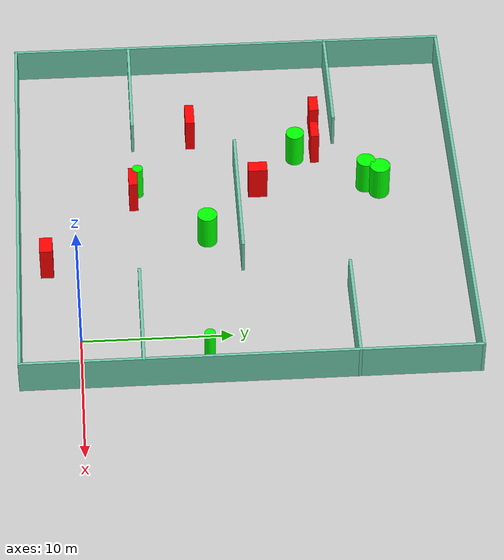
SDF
<sdf version="1.7">
 <world name="default">
  <light name="sun" type="directional">
   <pose>0 0 10 0 -0 0</pose>
   <diffuse>0.8 0.8 0.8 1</diffuse>
   <specular>0.2 0.2 0.2 1</specular>
   <attenuation>
    <range>1000</range>
    <constant>0.9</constant>
    <linear>0.01</linear>
    <quadratic>0.001</quadratic>
   </attenuation>
   <direction>-0.5 0.1 -0.9</direction>
   <spot><inner_angle>0</inner_angle><outer_angle>0</outer_angle><falloff>0</falloff></spot>
  </light>
  <model name="ground_plane">
   <static>1</static>
   <link name="link">
    <collision name="collision">
     <geometry><plane><normal>0 0 1</normal><size>100 100</size></plane></geometry>
     <surface>
      <contact><collide_bitmask>65535</collide_bitmask></contact>
      <friction><ode><mu>100</mu><mu2>50</mu2></ode></friction>
     </surface>
    </collision>
    <visual name="visual">
     <cast_shadows>0</cast_shadows>
     <geometry><plane><normal>0 0 1</normal><size>100 100</size></plane></geometry>
     <material>
      <script><uri>file://media/materials/scripts/gazebo.material</uri><name>Gazebo/Grey</name></script>
     </material>
    </visual>
   </link>
  </model>
  <gravity>0 0 -9.8</gravity>
  <magnetic_field>6e-06 2.3e-05 -4.2e-05</magnetic_field>
  <atmosphere type="adiabatic"/>
  <physics type="ode">
   <max_step_size>0.001</max_step_size>
   <real_time_factor>1</real_time_factor>
   <real_time_update_rate>1000</real_time_update_rate>
  </physics>
  <scene><ambient>0.4 0.4 0.4 1</ambient><background>0.7 0.7 0.7 1</background><shadows>1</shadows></scene>
  <spherical_coordinates>
   <surface_model>EARTH_WGS84</surface_model>
   <latitude_deg>0</latitude_deg>
   <longitude_deg>0</longitude_deg>
   <elevation>0</elevation>
   <heading_deg>0</heading_deg>
  </spherical_coordinates>
  <model name="my_base_walls">
   <link name="Wall_10">
    <collision name="Wall_10_Collision">
     <geometry><box><size>8.2 0.2 2.5</size></box></geometry>
     <pose>0 0 1.25 0 -0 0</pose>
    </collision>
    <visual name="Wall_10_Visual">
     <pose>0 0 1.25 0 -0 0</pose>
     <geometry><box><size>8.2 0.2 2.5</size></box></geometry>
     <material>
      <script><uri>file://media/materials/scripts/gazebo.material</uri><name>Gazebo/Grey</name></script>
      <ambient>0.435294 0.796078 0.67451 1</ambient>
     </material>
     <meta><layer>0</layer></meta>
    </visual>
    <pose>-11 -7 0 0 -0 0</pose>
   </link>
   <link name="Wall_12">
    <collision name="Wall_12_Collision">
     <geometry><box><size>8.2 0.2 2.5</size></box></geometry>
     <pose>0 0 1.25 0 -0 0</pose>
    </collision>
    <visual name="Wall_12_Visual">
     <pose>0 0 1.25 0 -0 0</pose>
     <geometry><box><size>8.2 0.2 2.5</size></box></geometry>
     <material>
      <script><uri>file://media/materials/scripts/gazebo.material</uri><name>Gazebo/Grey</name></script>
      <ambient>0.435294 0.796078 0.67451 1</ambient>
     </material>
     <meta><layer>0</layer></meta>
    </visual>
    <pose>-11 7 0 0 -0 0</pose>
   </link>
   <link name="Wall_14">
    <collision name="Wall_14_Collision">
     <geometry><box><size>8.2 0.2 2.5</size></box></geometry>
     <pose>0 0 1.25 0 -0 0</pose>
    </collision>
    <visual name="Wall_14_Visual">
     <pose>0 0 1.25 0 -0 0</pose>
     <geometry><box><size>8.2 0.2 2.5</size></box></geometry>
     <material>
      <script><uri>file://media/materials/scripts/gazebo.material</uri><name>Gazebo/Grey</name></script>
      <ambient>0.435294 0.796078 0.67451 1</ambient>
     </material>
     <meta><layer>0</layer></meta>
    </visual>
    <pose>11 7 0 0 -0 3.14159</pose>
   </link>
   <link name="Wall_16">
    <collision name="Wall_16_Collision">
     <geometry><box><size>10.2 0.2 2.5</size></box></geometry>
     <pose>0 0 1.25 0 -0 0</pose>
    </collision>
    <visual name="Wall_16_Visual">
     <pose>0 0 1.25 0 -0 0</pose>
     <geometry><box><size>10.2 0.2 2.5</size></box></geometry>
     <material>
      <script><uri>file://media/materials/scripts/gazebo.material</uri><name>Gazebo/Grey</name></script>
      <ambient>0.435294 0.796078 0.67451 1</ambient>
     </material>
     <meta><layer>0</layer></meta>
    </visual>
    <pose>0 0 0 0 -0 3.14159</pose>
   </link>
   <link name="Wall_2">
    <collision name="Wall_2_Collision">
     <geometry><box><size>30.2 0.2 2.5</size></box></geometry>
     <pose>0 0 1.25 0 -0 0</pose>
    </collision>
    <visual name="Wall_2_Visual">
     <pose>0 0 1.25 0 -0 0</pose>
     <geometry><box><size>30.2 0.2 2.5</size></box></geometry>
     <material>
      <script><uri>file://media/materials/scripts/gazebo.material</uri><name>Gazebo/Grey</name></script>
      <ambient>0.435294 0.796078 0.67451 1</ambient>
     </material>
     <meta><layer>0</layer></meta>
    </visual>
    <pose>0 -15 0 0 -0 3.14159</pose>
   </link>
   <link name="Wall_3">
    <collision name="Wall_3_Collision">
     <geometry><box><size>30.2 0.2 2.5</size></box></geometry>
     <pose>0 0 1.25 0 -0 0</pose>
    </collision>
    <visual name="Wall_3_Visual">
     <pose>0 0 1.25 0 -0 0</pose>
     <geometry><box><size>30.2 0.2 2.5</size></box></geometry>
     <material>
      <script><uri>file://media/materials/scripts/gazebo.material</uri><name>Gazebo/Grey</name></script>
      <ambient>0.435294 0.796078 0.67451 1</ambient>
     </material>
     <meta><layer>0</layer></meta>
    </visual>
    <pose>-15 0 0 0 -0 1.5708</pose>
   </link>
   <link name="Wall_4">
    <collision name="Wall_4_Collision">
     <geometry><box><size>30.2 0.2 2.5</size></box></geometry>
     <pose>0 0 1.25 0 -0 0</pose>
    </collision>
    <visual name="Wall_4_Visual">
     <pose>0 0 1.25 0 -0 0</pose>
     <geometry><box><size>30.2 0.2 2.5</size></box></geometry>
     <material>
      <script><uri>file://media/materials/scripts/gazebo.material</uri><name>Gazebo/Grey</name></script>
      <ambient>0.435294 0.796078 0.67451 1</ambient>
     </material>
     <meta><layer>0</layer></meta>
    </visual>
    <pose>0 15 0 0 -0 0</pose>
   </link>
   <link name="Wall_6">
    <collision name="Wall_6_Collision">
     <geometry><box><size>30.2 0.2 2.5</size></box></geometry>
     <pose>0 0 1.25 0 -0 0</pose>
    </collision>
    <visual name="Wall_6_Visual">
     <pose>0 0 1.25 0 -0 0</pose>
     <geometry><box><size>30.2 0.2 2.5</size></box></geometry>
     <material>
      <script><uri>file://media/materials/scripts/gazebo.material</uri><name>Gazebo/Grey</name></script>
      <ambient>0.435294 0.796078 0.67451 1</ambient>
     </material>
     <meta><layer>0</layer></meta>
    </visual>
    <pose>15 0 0 0 -0 1.5708</pose>
   </link>
   <link name="Wall_8">
    <collision name="Wall_8_Collision">
     <geometry><box><size>8.2 0.2 2.5</size></box></geometry>
     <pose>0 0 1.25 0 -0 0</pose>
    </collision>
    <visual name="Wall_8_Visual">
     <pose>0 0 1.25 0 -0 0</pose>
     <geometry><box><size>8.2 0.2 2.5</size></box></geometry>
     <material>
      <script><uri>file://media/materials/scripts/gazebo.material</uri><name>Gazebo/Grey</name></script>
      <ambient>0.435294 0.796078 0.67451 1</ambient>
     </material>
     <meta><layer>0</layer></meta>
    </visual>
    <pose>11 -7 0 0 -0 3.14159</pose>
   </link>
   <static>1</static>
   <pose>-11 11 0 0 -0 0</pose>
  </model>
  <model name="cylinder1">
   <static>1</static>
   <link name="link">
    <inertial>
     <mass>1</mass>
     <inertia><ixx>0.5</ixx><ixy>0</ixy><ixz>0</ixz><iyy>0.5</iyy><iyz>0</iyz><izz>1</izz></inertia>
    </inertial>
    <collision name="collision">
     <geometry><cylinder><radius>0.6368303209239029</radius><length>2.5</length></cylinder></geometry>
    </collision>
    <visual name="visual">
     <geometry><cylinder><radius>0.6368303209239029</radius><length>2.5</length></cylinder></geometry>
     <material>
      <ambient>0 1 0 1</ambient>
      <diffuse>0 1 0 1</diffuse>
      <specular>0.1 0.1 0.1 1</specular>
      <emissive>0 0 0 0</emissive>
     </material>
    </visual>
   </link>
   <pose>-13.525785178750752 19.903115564496026 1.25 0 0 0</pose>
  </model>
  <model name="cylinder2">
   <static>1</static>
   <link name="link">
    <inertial>
     <mass>1</mass>
     <inertia><ixx>0.5</ixx><ixy>0</ixy><ixz>0</ixz><iyy>0.5</iyy><iyz>0</iyz><izz>1</izz></inertia>
    </inertial>
    <collision name="collision">
     <geometry><cylinder><radius>0.6628122578606912</radius><length>2.5</length></cylinder></geometry>
    </collision>
    <visual name="visual">
     <geometry><cylinder><radius>0.6628122578606912</radius><length>2.5</length></cylinder></geometry>
     <material>
      <ambient>0 1 0 1</ambient>
      <diffuse>0 1 0 1</diffuse>
      <specular>0.1 0.1 0.1 1</specular>
      <emissive>0 0 0 0</emissive>
     </material>
    </visual>
   </link>
   <pose>-8.872115433520488 8.75592362658564 1.25 0 0 0</pose>
  </model>
  <model name="cylinder3">
   <static>1</static>
   <link name="link">
    <inertial>
     <mass>1</mass>
     <inertia><ixx>0.5</ixx><ixy>0</ixy><ixz>0</ixz><iyy>0.5</iyy><iyz>0</iyz><izz>1</izz></inertia>
    </inertial>
    <collision name="collision">
     <geometry><cylinder><radius>0.35708515854591694</radius><length>2.5</length></cylinder></geometry>
    </collision>
    <visual name="visual">
     <geometry><cylinder><radius>0.35708515854591694</radius><length>2.5</length></cylinder></geometry>
     <material>
      <ambient>0 1 0 1</ambient>
      <diffuse>0 1 0 1</diffuse>
      <specular>0.1 0.1 0.1 1</specular>
      <emissive>0 0 0 0</emissive>
     </material>
    </visual>
   </link>
   <pose>-13.60512959143748 4.216376732692911 1.25 0 0 0</pose>
  </model>
  <model name="cylinder4">
   <static>1</static>
   <link name="link">
    <inertial>
     <mass>1</mass>
     <inertia><ixx>0.5</ixx><ixy>0</ixy><ixz>0</ixz><iyy>0.5</iyy><iyz>0</iyz><izz>1</izz></inertia>
    </inertial>
    <collision name="collision">
     <geometry><cylinder><radius>0.6973983516868705</radius><length>2.5</length></cylinder></geometry>
    </collision>
    <visual name="visual">
     <geometry><cylinder><radius>0.6973983516868705</radius><length>2.5</length></cylinder></geometry>
     <material>
      <ambient>0 1 0 1</ambient>
      <diffuse>0 1 0 1</diffuse>
      <specular>0.1 0.1 0.1 1</specular>
      <emissive>0 0 0 0</emissive>
     </material>
    </visual>
   </link>
   <pose>-12.922095590094719 20.822207054258342 1.25 0 0 0</pose>
  </model>
  <model name="cylinder5">
   <static>1</static>
   <link name="link">
    <inertial>
     <mass>1</mass>
     <inertia><ixx>0.5</ixx><ixy>0</ixy><ixz>0</ixz><iyy>0.5</iyy><iyz>0</iyz><izz>1</izz></inertia>
    </inertial>
    <collision name="collision">
     <geometry><cylinder><radius>0.6231632947952088</radius><length>2.5</length></cylinder></geometry>
    </collision>
    <visual name="visual">
     <geometry><cylinder><radius>0.6231632947952088</radius><length>2.5</length></cylinder></geometry>
     <material>
      <ambient>0 1 0 1</ambient>
      <diffuse>0 1 0 1</diffuse>
      <specular>0.1 0.1 0.1 1</specular>
      <emissive>0 0 0 0</emissive>
     </material>
    </visual>
   </link>
   <pose>-16.499432426958418 15.232390889760648 1.25 0 0 0</pose>
  </model>
  <model name="cylinder6">
   <static>1</static>
   <link name="link">
    <inertial>
     <mass>1</mass>
     <inertia><ixx>0.5</ixx><ixy>0</ixy><ixz>0</ixz><iyy>0.5</iyy><iyz>0</iyz><izz>1</izz></inertia>
    </inertial>
    <collision name="collision">
     <geometry><cylinder><radius>0.35729175223442894</radius><length>2.5</length></cylinder></geometry>
    </collision>
    <visual name="visual">
     <geometry><cylinder><radius>0.35729175223442894</radius><length>2.5</length></cylinder></geometry>
     <material>
      <ambient>0 1 0 1</ambient>
      <diffuse>0 1 0 1</diffuse>
      <specular>0.1 0.1 0.1 1</specular>
      <emissive>0 0 0 0</emissive>
     </material>
    </visual>
   </link>
   <pose>1.9997584654542742 8.362683979444439 1.25 0 0 0</pose>
  </model>
  <model name="box1">
   <static>1</static>
   <link name="link">
    <inertial>
     <mass>1</mass>
     <inertia><ixx>0.083</ixx><ixy>0</ixy><ixz>0</ixz><iyy>0.083</iyy><iyz>0</iyz><izz>0.083</izz></inertia>
    </inertial>
    <collision name="collision">
     <geometry><box><size>0.884843038310153 1.3019112854030375 2.5</size></box></geometry>
    </collision>
    <visual name="visual">
     <geometry><box><size>0.884843038310153 1.3019112854030375 2.5</size></box></geometry>
     <material>
      <ambient>1 0 0 1</ambient>
      <diffuse>1 0 0 1</diffuse>
      <specular>0.1 0.1 0.1 1</specular>
      <emissive>0 0 0 0</emissive>
     </material>
    </visual>
    <sensor name="my_contact" type="contact">
     <contact><collision>box_collision</collision><topic>__default_topic__</topic></contact>
    </sensor>
   </link>
   <pose>-13.317054250609052 12.438796103636742 1.25 0 0 0</pose>
  </model>
  <model name="box2">
   <static>1</static>
   <link name="link">
    <inertial>
     <mass>1</mass>
     <inertia><ixx>0.083</ixx><ixy>0</ixy><ixz>0</ixz><iyy>0.083</iyy><iyz>0</iyz><izz>0.083</izz></inertia>
    </inertial>
    <collision name="collision">
     <geometry><box><size>1.42843386368355 0.6398960401251529 2.5</size></box></geometry>
    </collision>
    <visual name="visual">
     <geometry><box><size>1.42843386368355 0.6398960401251529 2.5</size></box></geometry>
     <material>
      <ambient>1 0 0 1</ambient>
      <diffuse>1 0 0 1</diffuse>
      <specular>0.1 0.1 0.1 1</specular>
      <emissive>0 0 0 0</emissive>
     </material>
    </visual>
    <sensor name="my_contact" type="contact">
     <contact><collision>box_collision</collision><topic>__default_topic__</topic></contact>
    </sensor>
   </link>
   <pose>-19.429606470957502 16.72990609929778 1.25 0 0 0</pose>
  </model>
  <model name="box3">
   <static>1</static>
   <link name="link">
    <inertial>
     <mass>1</mass>
     <inertia><ixx>0.083</ixx><ixy>0</ixy><ixz>0</ixz><iyy>0.083</iyy><iyz>0</iyz><izz>0.083</izz></inertia>
    </inertial>
    <collision name="collision">
     <geometry><box><size>1.340250913311407 0.8700423741135765 2.5</size></box></geometry>
    </collision>
    <visual name="visual">
     <geometry><box><size>1.340250913311407 0.8700423741135765 2.5</size></box></geometry>
     <material>
      <ambient>1 0 0 1</ambient>
      <diffuse>1 0 0 1</diffuse>
      <specular>0.1 0.1 0.1 1</specular>
      <emissive>0 0 0 0</emissive>
     </material>
    </visual>
    <sensor name="my_contact" type="contact">
     <contact><collision>box_collision</collision><topic>__default_topic__</topic></contact>
    </sensor>
   </link>
   <pose>-6.62702793974098 -2.1486559092659308 1.25 0 0 0</pose>
  </model>
  <model name="box4">
   <static>1</static>
   <link name="link">
    <inertial>
     <mass>1</mass>
     <inertia><ixx>0.083</ixx><ixy>0</ixy><ixz>0</ixz><iyy>0.083</iyy><iyz>0</iyz><izz>0.083</izz></inertia>
    </inertial>
    <collision name="collision">
     <geometry><box><size>1.494679800161126 0.5700854069287349 2.5</size></box></geometry>
    </collision>
    <visual name="visual">
     <geometry><box><size>1.494679800161126 0.5700854069287349 2.5</size></box></geometry>
     <material>
      <ambient>1 0 0 1</ambient>
      <diffuse>1 0 0 1</diffuse>
      <specular>0.1 0.1 0.1 1</specular>
      <emissive>0 0 0 0</emissive>
     </material>
    </visual>
    <sensor name="my_contact" type="contact">
     <contact><collision>box_collision</collision><topic>__default_topic__</topic></contact>
    </sensor>
   </link>
   <pose>-16.820128958251402 16.602248583187954 1.25 0 0 0</pose>
  </model>
  <model name="box5">
   <static>1</static>
   <link name="link">
    <inertial>
     <mass>1</mass>
     <inertia><ixx>0.083</ixx><ixy>0</ixy><ixz>0</ixz><iyy>0.083</iyy><iyz>0</iyz><izz>0.083</izz></inertia>
    </inertial>
    <collision name="collision">
     <geometry><box><size>1.6518065154992507 0.604603838367189 2.5</size></box></geometry>
    </collision>
    <visual name="visual">
     <geometry><box><size>1.6518065154992507 0.604603838367189 2.5</size></box></geometry>
     <material>
      <ambient>1 0 0 1</ambient>
      <diffuse>1 0 0 1</diffuse>
      <specular>0.1 0.1 0.1 1</specular>
      <emissive>0 0 0 0</emissive>
     </material>
    </visual>
    <sensor name="my_contact" type="contact">
     <contact><collision>box_collision</collision><topic>__default_topic__</topic></contact>
    </sensor>
   </link>
   <pose>-12.84362335448633 3.871461128426313 1.25 0 0 0</pose>
  </model>
  <model name="box6">
   <static>1</static>
   <link name="link">
    <inertial>
     <mass>1</mass>
     <inertia><ixx>0.083</ixx><ixy>0</ixy><ixz>0</ixz><iyy>0.083</iyy><iyz>0</iyz><izz>0.083</izz></inertia>
    </inertial>
    <collision name="collision">
     <geometry><box><size>1.836125900039966 0.6256037415576926 2.5</size></box></geometry>
    </collision>
    <visual name="visual">
     <geometry><box><size>1.836125900039966 0.6256037415576926 2.5</size></box></geometry>
     <material>
      <ambient>1 0 0 1</ambient>
      <diffuse>1 0 0 1</diffuse>
      <specular>0.1 0.1 0.1 1</specular>
      <emissive>0 0 0 0</emissive>
     </material>
    </visual>
    <sensor name="my_contact" type="contact">
     <contact><collision>box_collision</collision><topic>__default_topic__</topic></contact>
    </sensor>
   </link>
   <pose>-18.84696038573328 8.024239942634267 1.25 0 0 0</pose>
  </model>
 </world>
</sdf>
